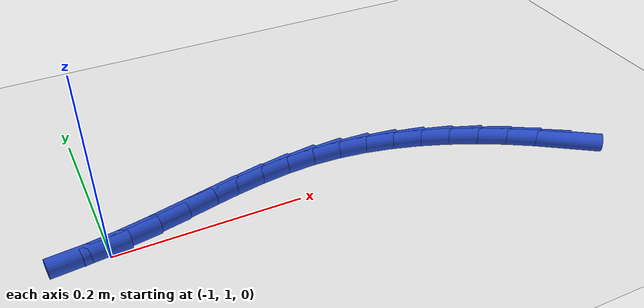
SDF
<sdf version="1.6">
 <world name="default">
  <model name="ground_plane">
   <static>1</static>
   <link name="link">
    <collision name="collision">
     <geometry><plane><normal>0 0 1</normal><size>100 100</size></plane></geometry>
     <surface><friction><ode><mu>100</mu><mu2>50</mu2></ode></friction></surface>
    </collision>
    <visual name="visual">
     <cast_shadows>0</cast_shadows>
     <geometry><plane><normal>0 0 1</normal><size>100 100</size></plane></geometry>
     <material>
      <script><uri>file://media/materials/scripts/gazebo.material</uri><name>Gazebo/WhiteGlow</name></script>
     </material>
    </visual>
   </link>
  </model>
  <model name="line">
   <link name="link_34">
    <pose>-0.4913814258037381 0.9503628952817245 0.01 0 1.57 -0.6063959061464046</pose>
    <collision name="collision">
     <geometry><cylinder><radius>0.01</radius><length>0.08</length></cylinder></geometry>
    </collision>
    <visual name="visual">
     <material>
      <script><name>Gazebo/Blue</name><uri>file://media/materials/scripts/gazebo.material</uri></script>
     </material>
     <geometry><cylinder><radius>0.01</radius><length>0.08</length></cylinder></geometry>
    </visual>
   </link>
   <link name="link_35">
    <pose>-0.5189524568804732 0.9694852710560934 0.01 0 1.57 -0.5504173423679374</pose>
    <collision name="collision">
     <geometry><cylinder><radius>0.01</radius><length>0.08</length></cylinder></geometry>
    </collision>
    <visual name="visual">
     <material>
      <script><name>Gazebo/Blue</name><uri>file://media/materials/scripts/gazebo.material</uri></script>
     </material>
     <geometry><cylinder><radius>0.01</radius><length>0.08</length></cylinder></geometry>
    </visual>
   </link>
   <link name="link_36">
    <pose>-0.5475338733523413 0.9870251027357363 0.01 0 1.57 -0.4915052944230036</pose>
    <collision name="collision">
     <geometry><cylinder><radius>0.01</radius><length>0.08</length></cylinder></geometry>
    </collision>
    <visual name="visual">
     <material>
      <script><name>Gazebo/Blue</name><uri>file://media/materials/scripts/gazebo.material</uri></script>
     </material>
     <geometry><cylinder><radius>0.01</radius><length>0.08</length></cylinder></geometry>
    </visual>
   </link>
   <link name="link_37">
    <pose>-0.5769936236109053 1.0027955921911713 0.01 0 1.57 -0.42893895141502464</pose>
    <collision name="collision">
     <geometry><cylinder><radius>0.01</radius><length>0.08</length></cylinder></geometry>
    </collision>
    <visual name="visual">
     <material>
      <script><name>Gazebo/Blue</name><uri>file://media/materials/scripts/gazebo.material</uri></script>
     </material>
     <geometry><cylinder><radius>0.01</radius><length>0.08</length></cylinder></geometry>
    </visual>
   </link>
   <link name="link_38">
    <pose>-0.6071996560477273 1.0166099412929166 0.01 0 1.57 -0.3620042259327489</pose>
    <collision name="collision">
     <geometry><cylinder><radius>0.01</radius><length>0.08</length></cylinder></geometry>
    </collision>
    <visual name="visual">
     <material>
      <script><name>Gazebo/Blue</name><uri>file://media/materials/scripts/gazebo.material</uri></script>
     </material>
     <geometry><cylinder><radius>0.01</radius><length>0.08</length></cylinder></geometry>
    </visual>
   </link>
   <link name="link_39">
    <pose>-0.6380199190543697 1.0282813519114902 0.01 0 1.57 -0.2900183358659372</pose>
    <collision name="collision">
     <geometry><cylinder><radius>0.01</radius><length>0.08</length></cylinder></geometry>
    </collision>
    <visual name="visual">
     <material>
      <script><name>Gazebo/Blue</name><uri>file://media/materials/scripts/gazebo.material</uri></script>
     </material>
     <geometry><cylinder><radius>0.01</radius><length>0.08</length></cylinder></geometry>
    </visual>
   </link>
   <link name="link_40">
    <pose>-0.6693223610223952 1.0376230259174106 0.01 0 1.57 -0.21237509941672514</pose>
    <collision name="collision">
     <geometry><cylinder><radius>0.01</radius><length>0.08</length></cylinder></geometry>
    </collision>
    <visual name="visual">
     <material>
      <script><name>Gazebo/Blue</name><uri>file://media/materials/scripts/gazebo.material</uri></script>
     </material>
     <geometry><cylinder><radius>0.01</radius><length>0.08</length></cylinder></geometry>
    </visual>
   </link>
   <link name="link_41">
    <pose>-0.7009749303433658 1.0444481651811957 0.01 0 1.57 -0.1286153377310343</pose>
    <collision name="collision">
     <geometry><cylinder><radius>0.01</radius><length>0.08</length></cylinder></geometry>
    </collision>
    <visual name="visual">
     <material>
      <script><name>Gazebo/Blue</name><uri>file://media/materials/scripts/gazebo.material</uri></script>
     </material>
     <geometry><cylinder><radius>0.01</radius><length>0.08</length></cylinder></geometry>
    </visual>
   </link>
   <link name="link_42">
    <pose>-0.7328455754088439 1.0485699715733632 0.01 0 1.57 -0.038522977664698574</pose>
    <collision name="collision">
     <geometry><cylinder><radius>0.01</radius><length>0.08</length></cylinder></geometry>
    </collision>
    <visual name="visual">
     <material>
      <script><name>Gazebo/Blue</name><uri>file://media/materials/scripts/gazebo.material</uri></script>
     </material>
     <geometry><cylinder><radius>0.01</radius><length>0.08</length></cylinder></geometry>
    </visual>
   </link>
   <link name="link_43">
    <pose>-0.7648022446103924 1.0498016469644322 0.01 0 1.57 0.05433180176027462</pose>
    <collision name="collision">
     <geometry><cylinder><radius>0.01</radius><length>0.08</length></cylinder></geometry>
    </collision>
    <visual name="visual">
     <material>
      <script><name>Gazebo/Blue</name><uri>file://media/materials/scripts/gazebo.material</uri></script>
     </material>
     <geometry><cylinder><radius>0.01</radius><length>0.08</length></cylinder></geometry>
    </visual>
   </link>
   <link name="link_44">
    <pose>-0.796729353519501 1.0480652807237087 0.01 0 1.57 0.13166742885493868</pose>
    <collision name="collision">
     <geometry><cylinder><radius>0.01</radius><length>0.08</length></cylinder></geometry>
    </collision>
    <visual name="visual">
     <material>
      <script><name>Gazebo/Blue</name><uri>file://media/materials/scripts/gazebo.material</uri></script>
     </material>
     <geometry><cylinder><radius>0.01</radius><length>0.08</length></cylinder></geometry>
    </visual>
   </link>
   <link name="link_45">
    <pose>-0.8285963188274681 1.0438450232030496 0.01 0 1.57 0.187655477571221</pose>
    <collision name="collision">
     <geometry><cylinder><radius>0.01</radius><length>0.08</length></cylinder></geometry>
    </collision>
    <visual name="visual">
     <material>
      <script><name>Gazebo/Blue</name><uri>file://media/materials/scripts/gazebo.material</uri></script>
     </material>
     <geometry><cylinder><radius>0.01</radius><length>0.08</length></cylinder></geometry>
    </visual>
   </link>
   <link name="link_46">
    <pose>-0.8603999036841893 1.0378058503413552 0.01 0 1.57 0.22287956981717122</pose>
    <collision name="collision">
     <geometry><cylinder><radius>0.01</radius><length>0.08</length></cylinder></geometry>
    </collision>
    <visual name="visual">
     <material>
      <script><name>Gazebo/Blue</name><uri>file://media/materials/scripts/gazebo.material</uri></script>
     </material>
     <geometry><cylinder><radius>0.01</radius><length>0.08</length></cylinder></geometry>
    </visual>
   </link>
   <link name="link_47">
    <pose>-0.8921368842636005 1.0306128241976285 0.01 0 1.57 0.23798301975057237</pose>
    <collision name="collision">
     <geometry><cylinder><radius>0.01</radius><length>0.08</length></cylinder></geometry>
    </collision>
    <visual name="visual">
     <material>
      <script><name>Gazebo/Blue</name><uri>file://media/materials/scripts/gazebo.material</uri></script>
     </material>
     <geometry><cylinder><radius>0.01</radius><length>0.08</length></cylinder></geometry>
    </visual>
   </link>
   <link name="link_48">
    <pose>-0.9238040367396388 1.0229310068308712 0.01 0 1.57 0.23323815431395195</pose>
    <collision name="collision">
     <geometry><cylinder><radius>0.01</radius><length>0.08</length></cylinder></geometry>
    </collision>
    <visual name="visual">
     <material>
      <script><name>Gazebo/Blue</name><uri>file://media/materials/scripts/gazebo.material</uri></script>
     </material>
     <geometry><cylinder><radius>0.01</radius><length>0.08</length></cylinder></geometry>
    </visual>
   </link>
   <link name="link_49">
    <pose>-0.9553981372862398 1.0154254603000856 0.01 0 1.57 0.20837354650033618</pose>
    <collision name="collision">
     <geometry><cylinder><radius>0.01</radius><length>0.08</length></cylinder></geometry>
    </collision>
    <visual name="visual">
     <material>
      <script><name>Gazebo/Blue</name><uri>file://media/materials/scripts/gazebo.material</uri></script>
     </material>
     <geometry><cylinder><radius>0.01</radius><length>0.08</length></cylinder></geometry>
    </visual>
   </link>
   <link name="link_50">
    <pose>-0.9869159620773402 1.0087612466642735 0.01 0 1.57 0.1626128514162077</pose>
    <collision name="collision">
     <geometry><cylinder><radius>0.01</radius><length>0.08</length></cylinder></geometry>
    </collision>
    <visual name="visual">
     <material>
      <script><name>Gazebo/Blue</name><uri>file://media/materials/scripts/gazebo.material</uri></script>
     </material>
     <geometry><cylinder><radius>0.01</radius><length>0.08</length></cylinder></geometry>
    </visual>
   </link>
   <link name="link_51">
    <pose>-1.018354287286876 1.003603427982437 0.01 0 1.57 0.09518657205054473</pose>
    <collision name="collision">
     <geometry><cylinder><radius>0.01</radius><length>0.08</length></cylinder></geometry>
    </collision>
    <visual name="visual">
     <material>
      <script><name>Gazebo/Blue</name><uri>file://media/materials/scripts/gazebo.material</uri></script>
     </material>
     <geometry><cylinder><radius>0.01</radius><length>0.08</length></cylinder></geometry>
    </visual>
   </link>
  </model>
 </world>
</sdf>
